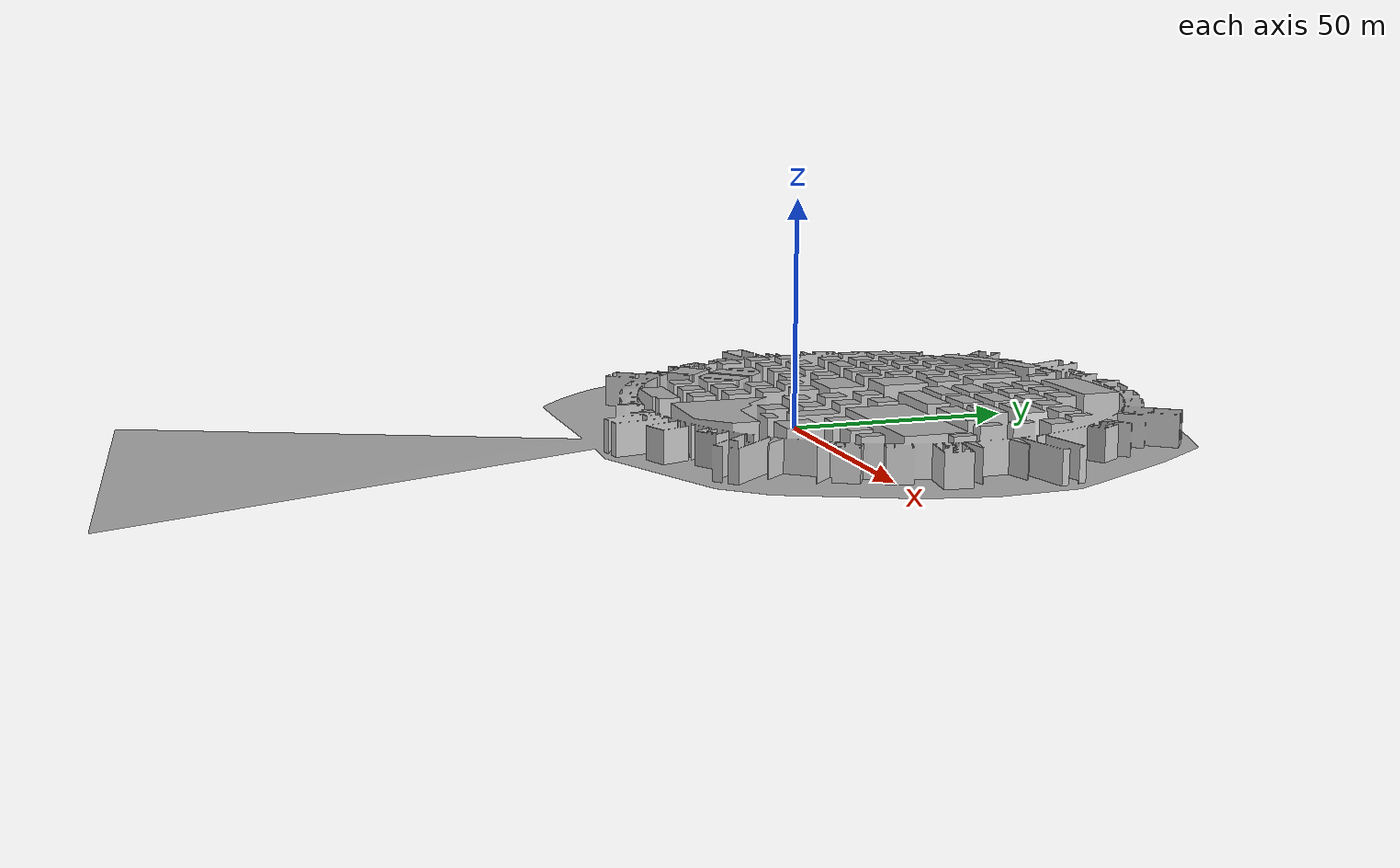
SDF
<?xml version="1.0" ?>
<sdf version="1.5">
  <model name="RC2016VRL_port1">
    <static>true</static>
    <pose>0 0 0 0 0 0</pose>
    <link name="link">
      <collision name="collision">
        <geometry>
          <mesh>
            <uri>model://RC2016VRL_port1/port1.dae</uri>
          </mesh>
        </geometry>
      </collision>
      <visual name="visual">
        <geometry>
          <mesh>
            <uri>model://RC2016VRL_port1/port1.dae</uri>
          </mesh>
        </geometry>
        <cast_shadows>false</cast_shadows>
      </visual>
    </link>
  </model>
</sdf>
